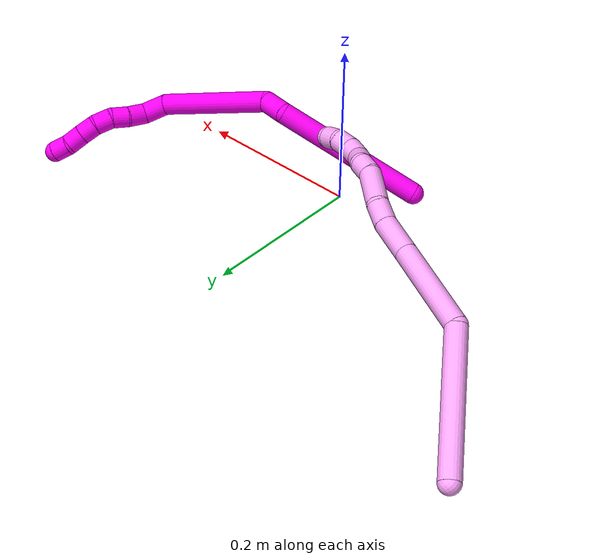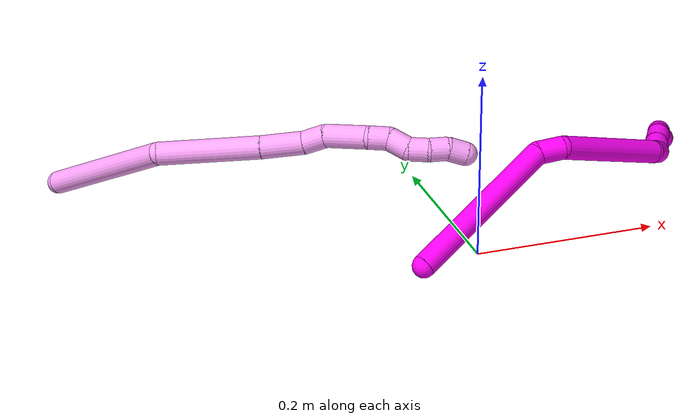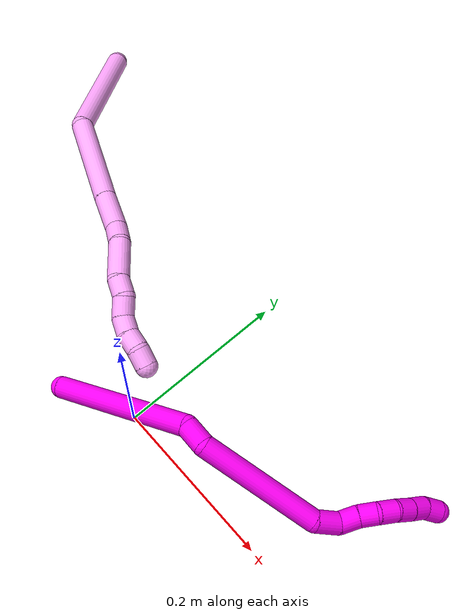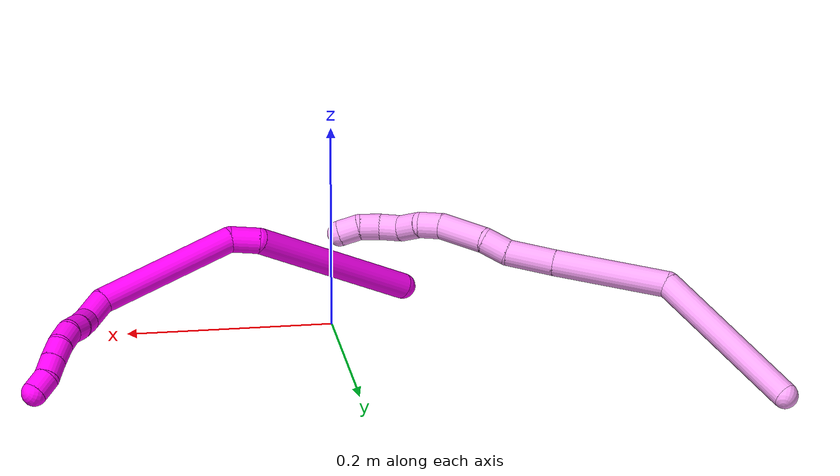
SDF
<sdf version="1.7">
 <world name="default">
  <model name="4">
   <static>0</static>
   <link name="4">
    <collision name="collision-cylinder-e_1_1_4">
     <pose>0.061261 -0.00298 0.054616 0.054517 0.841943 0.024414</pose>
     <geometry><cylinder><radius>0.0125</radius><length>0.164251</length></cylinder></geometry>
     <surface>
      <friction><ode><mu>1.16</mu><mu2>1.16</mu2><slip1>0</slip1><slip2>0</slip2></ode></friction>
      <contact><ode><kp>1e+06</kp><kd>1</kd><max_vel>0</max_vel><min_depth>0.001</min_depth></ode></contact>
     </surface>
    </collision>
    <visual name="visual-cylinder-e_1_1_4">
     <pose>0.061261 -0.00298 0.054616 0.054517 0.841943 0.024414</pose>
     <geometry><cylinder><radius>0.0125</radius><length>0.164251</length></cylinder></geometry>
     <material><ambient>1 0.65098 0.996078 1</ambient></material>
    </visual>
    <collision name="collision-cylinder-e_2_4_5">
     <pose>0.177076 -0.013627 0.116459 0.814765 1.38001 0.684298</pose>
     <geometry><cylinder><radius>0.0125</radius><length>0.111126</length></cylinder></geometry>
     <surface>
      <friction><ode><mu>1.16</mu><mu2>1.16</mu2><slip1>0</slip1><slip2>0</slip2></ode></friction>
      <contact><ode><kp>1e+06</kp><kd>1</kd><max_vel>0</max_vel><min_depth>0.001</min_depth></ode></contact>
     </surface>
    </collision>
    <visual name="visual-cylinder-e_2_4_5">
     <pose>0.177076 -0.013627 0.116459 0.814765 1.38001 0.684298</pose>
     <geometry><cylinder><radius>0.0125</radius><length>0.111126</length></cylinder></geometry>
     <material><ambient>1 0.65098 0.996078 1</ambient></material>
    </visual>
    <collision name="collision-cylinder-e_3_5_6">
     <pose>0.25434 -0.023412 0.126599 0.629373 1.41352 0.542215</pose>
     <geometry><cylinder><radius>0.0125</radius><length>0.045985</length></cylinder></geometry>
     <surface>
      <friction><ode><mu>1.16</mu><mu2>1.16</mu2><slip1>0</slip1><slip2>0</slip2></ode></friction>
      <contact><ode><kp>1e+06</kp><kd>1</kd><max_vel>0</max_vel><min_depth>0.001</min_depth></ode></contact>
     </surface>
    </collision>
    <visual name="visual-cylinder-e_3_5_6">
     <pose>0.25434 -0.023412 0.126599 0.629373 1.41352 0.542215</pose>
     <geometry><cylinder><radius>0.0125</radius><length>0.045985</length></cylinder></geometry>
     <material><ambient>1 0.65098 0.996078 1</ambient></material>
    </visual>
    <collision name="collision-cylinder-e_4_6_7">
     <pose>0.288891 -0.024677 0.133749 -0.199013 1.22068 -0.13943</pose>
     <geometry><cylinder><radius>0.0125</radius><length>0.025214</length></cylinder></geometry>
     <surface>
      <friction><ode><mu>1.16</mu><mu2>1.16</mu2><slip1>0</slip1><slip2>0</slip2></ode></friction>
      <contact><ode><kp>1e+06</kp><kd>1</kd><max_vel>0</max_vel><min_depth>0.001</min_depth></ode></contact>
     </surface>
    </collision>
    <visual name="visual-cylinder-e_4_6_7">
     <pose>0.288891 -0.024677 0.133749 -0.199013 1.22068 -0.13943</pose>
     <geometry><cylinder><radius>0.0125</radius><length>0.025214</length></cylinder></geometry>
     <material><ambient>1 0.65098 0.996078 1</ambient></material>
    </visual>
    <collision name="collision-cylinder-e_5_7_8">
     <pose>0.32199 -0.030036 0.146824 0.612897 1.10063 0.383497</pose>
     <geometry><cylinder><radius>0.0125</radius><length>0.047688</length></cylinder></geometry>
     <surface>
      <friction><ode><mu>1.16</mu><mu2>1.16</mu2><slip1>0</slip1><slip2>0</slip2></ode></friction>
      <contact><ode><kp>1e+06</kp><kd>1</kd><max_vel>0</max_vel><min_depth>0.001</min_depth></ode></contact>
     </surface>
    </collision>
    <visual name="visual-cylinder-e_5_7_8">
     <pose>0.32199 -0.030036 0.146824 0.612897 1.10063 0.383497</pose>
     <geometry><cylinder><radius>0.0125</radius><length>0.047688</length></cylinder></geometry>
     <material><ambient>1 0.65098 0.996078 1</ambient></material>
    </visual>
    <collision name="collision-cylinder-e_6_8_9">
     <pose>0.353781 -0.038908 0.156231 1.35918 1.31819 1.11851</pose>
     <geometry><cylinder><radius>0.0125</radius><length>0.021759</length></cylinder></geometry>
     <surface>
      <friction><ode><mu>1.16</mu><mu2>1.16</mu2><slip1>0</slip1><slip2>0</slip2></ode></friction>
      <contact><ode><kp>1e+06</kp><kd>1</kd><max_vel>0</max_vel><min_depth>0.001</min_depth></ode></contact>
     </surface>
    </collision>
    <visual name="visual-cylinder-e_6_8_9">
     <pose>0.353781 -0.038908 0.156231 1.35918 1.31819 1.11851</pose>
     <geometry><cylinder><radius>0.0125</radius><length>0.021759</length></cylinder></geometry>
     <material><ambient>1 0.65098 0.996078 1</ambient></material>
    </visual>
    <collision name="collision-cylinder-e_7_9_10">
     <pose>0.37306 -0.049022 0.158526 1.34362 0.852028 0.692646</pose>
     <geometry><cylinder><radius>0.0125</radius><length>0.02324</length></cylinder></geometry>
     <surface>
      <friction><ode><mu>1.16</mu><mu2>1.16</mu2><slip1>0</slip1><slip2>0</slip2></ode></friction>
      <contact><ode><kp>1e+06</kp><kd>1</kd><max_vel>0</max_vel><min_depth>0.001</min_depth></ode></contact>
     </surface>
    </collision>
    <visual name="visual-cylinder-e_7_9_10">
     <pose>0.37306 -0.049022 0.158526 1.34362 0.852028 0.692646</pose>
     <geometry><cylinder><radius>0.0125</radius><length>0.02324</length></cylinder></geometry>
     <material><ambient>1 0.65098 0.996078 1</ambient></material>
    </visual>
    <collision name="collision-cylinder-e_8_10_11">
     <pose>0.391856 -0.058894 0.160884 1.31379 1.32698 1.08496</pose>
     <geometry><cylinder><radius>0.0125</radius><length>0.020712</length></cylinder></geometry>
     <surface>
      <friction><ode><mu>1.16</mu><mu2>1.16</mu2><slip1>0</slip1><slip2>0</slip2></ode></friction>
      <contact><ode><kp>1e+06</kp><kd>1</kd><max_vel>0</max_vel><min_depth>0.001</min_depth></ode></contact>
     </surface>
    </collision>
    <visual name="visual-cylinder-e_8_10_11">
     <pose>0.391856 -0.058894 0.160884 1.31379 1.32698 1.08496</pose>
     <geometry><cylinder><radius>0.0125</radius><length>0.020712</length></cylinder></geometry>
     <material><ambient>1 0.65098 0.996078 1</ambient></material>
    </visual>
    <collision name="collision-cylinder-e_9_11_12">
     <pose>0.411753 -0.062195 0.159996 2.61656 1.39379 2.52028</pose>
     <geometry><cylinder><radius>0.0125</radius><length>0.020009</length></cylinder></geometry>
     <surface>
      <friction><ode><mu>1.16</mu><mu2>1.16</mu2><slip1>0</slip1><slip2>0</slip2></ode></friction>
      <contact><ode><kp>1e+06</kp><kd>1</kd><max_vel>0</max_vel><min_depth>0.001</min_depth></ode></contact>
     </surface>
    </collision>
    <visual name="visual-cylinder-e_9_11_12">
     <pose>0.411753 -0.062195 0.159996 2.61656 1.39379 2.52028</pose>
     <geometry><cylinder><radius>0.0125</radius><length>0.020009</length></cylinder></geometry>
     <material><ambient>1 0.65098 0.996078 1</ambient></material>
    </visual>
    <collision name="collision-cylinder-e_10_12_2">
     <pose>0.430405 -0.066952 0.155706 2.19069 1.07524 1.71698</pose>
     <geometry><cylinder><radius>0.0125</radius><length>0.020016</length></cylinder></geometry>
     <surface>
      <friction><ode><mu>1.16</mu><mu2>1.16</mu2><slip1>0</slip1><slip2>0</slip2></ode></friction>
      <contact><ode><kp>1e+06</kp><kd>1</kd><max_vel>0</max_vel><min_depth>0.001</min_depth></ode></contact>
     </surface>
    </collision>
    <visual name="visual-cylinder-e_10_12_2">
     <pose>0.430405 -0.066952 0.155706 2.19069 1.07524 1.71698</pose>
     <geometry><cylinder><radius>0.0125</radius><length>0.020016</length></cylinder></geometry>
     <material><ambient>1 0.65098 0.996078 1</ambient></material>
    </visual>
    <collision name="collision-sphere-2">
     <pose>0.439209 -0.070825 0.152942 0 -0 0</pose>
     <geometry><sphere><radius>0.0125</radius></sphere></geometry>
     <surface>
      <friction><ode><mu>1.16</mu><mu2>1.16</mu2><slip1>0</slip1><slip2>0</slip2></ode></friction>
      <contact><ode><kp>1e+06</kp><kd>1</kd><max_vel>0</max_vel><min_depth>0.001</min_depth></ode></contact>
     </surface>
    </collision>
    <visual name="visual-sphere-2">
     <pose>0.439209 -0.070825 0.152942 0 -0 0</pose>
     <geometry><sphere><radius>0.0125</radius></sphere></geometry>
     <material><ambient>1 0.65098 0.996078 1</ambient></material>
    </visual>
    <collision name="collision-sphere-12">
     <pose>0.421601 -0.063078 0.158471 0 -0 0</pose>
     <geometry><sphere><radius>0.0125</radius></sphere></geometry>
     <surface>
      <friction><ode><mu>1.16</mu><mu2>1.16</mu2><slip1>0</slip1><slip2>0</slip2></ode></friction>
      <contact><ode><kp>1e+06</kp><kd>1</kd><max_vel>0</max_vel><min_depth>0.001</min_depth></ode></contact>
     </surface>
    </collision>
    <visual name="visual-sphere-12">
     <pose>0.421601 -0.063078 0.158471 0 -0 0</pose>
     <geometry><sphere><radius>0.0125</radius></sphere></geometry>
     <material><ambient>1 0.65098 0.996078 1</ambient></material>
    </visual>
    <collision name="collision-sphere-11">
     <pose>0.401905 -0.061312 0.16152 0 -0 0</pose>
     <geometry><sphere><radius>0.0125</radius></sphere></geometry>
     <surface>
      <friction><ode><mu>1.16</mu><mu2>1.16</mu2><slip1>0</slip1><slip2>0</slip2></ode></friction>
      <contact><ode><kp>1e+06</kp><kd>1</kd><max_vel>0</max_vel><min_depth>0.001</min_depth></ode></contact>
     </surface>
    </collision>
    <visual name="visual-sphere-11">
     <pose>0.401905 -0.061312 0.16152 0 -0 0</pose>
     <geometry><sphere><radius>0.0125</radius></sphere></geometry>
     <material><ambient>1 0.65098 0.996078 1</ambient></material>
    </visual>
    <collision name="collision-sphere-10">
     <pose>0.381806 -0.056476 0.160249 0 -0 0</pose>
     <geometry><sphere><radius>0.0125</radius></sphere></geometry>
     <surface>
      <friction><ode><mu>1.16</mu><mu2>1.16</mu2><slip1>0</slip1><slip2>0</slip2></ode></friction>
      <contact><ode><kp>1e+06</kp><kd>1</kd><max_vel>0</max_vel><min_depth>0.001</min_depth></ode></contact>
     </surface>
    </collision>
    <visual name="visual-sphere-10">
     <pose>0.381806 -0.056476 0.160249 0 -0 0</pose>
     <geometry><sphere><radius>0.0125</radius></sphere></geometry>
     <material><ambient>1 0.65098 0.996078 1</ambient></material>
    </visual>
    <collision name="collision-sphere-9">
     <pose>0.364315 -0.041567 0.156802 0 -0 0</pose>
     <geometry><sphere><radius>0.0125</radius></sphere></geometry>
     <surface>
      <friction><ode><mu>1.16</mu><mu2>1.16</mu2><slip1>0</slip1><slip2>0</slip2></ode></friction>
      <contact><ode><kp>1e+06</kp><kd>1</kd><max_vel>0</max_vel><min_depth>0.001</min_depth></ode></contact>
     </surface>
    </collision>
    <visual name="visual-sphere-9">
     <pose>0.364315 -0.041567 0.156802 0 -0 0</pose>
     <geometry><sphere><radius>0.0125</radius></sphere></geometry>
     <material><ambient>1 0.65098 0.996078 1</ambient></material>
    </visual>
    <collision name="collision-sphere-4">
     <pose>0.122521 -0.005961 0.109231 0 -0 0</pose>
     <geometry><sphere><radius>0.0125</radius></sphere></geometry>
     <surface>
      <friction><ode><mu>1.16</mu><mu2>1.16</mu2><slip1>0</slip1><slip2>0</slip2></ode></friction>
      <contact><ode><kp>1e+06</kp><kd>1</kd><max_vel>0</max_vel><min_depth>0.001</min_depth></ode></contact>
     </surface>
    </collision>
    <visual name="visual-sphere-4">
     <pose>0.122521 -0.005961 0.109231 0 -0 0</pose>
     <geometry><sphere><radius>0.0125</radius></sphere></geometry>
     <material><ambient>1 0.65098 0.996078 1</ambient></material>
    </visual>
    <collision name="collision-sphere-1">
     <geometry><sphere><radius>0.0125</radius></sphere></geometry>
     <surface>
      <friction><ode><mu>1.16</mu><mu2>1.16</mu2><slip1>0</slip1><slip2>0</slip2></ode></friction>
      <contact><ode><kp>1e+06</kp><kd>1</kd><max_vel>0</max_vel><min_depth>0.001</min_depth></ode></contact>
     </surface>
    </collision>
    <visual name="visual-sphere-1">
     <geometry><sphere><radius>0.0125</radius></sphere></geometry>
     <material><ambient>1 0.65098 0.996078 1</ambient></material>
    </visual>
    <collision name="collision-sphere-8">
     <pose>0.343247 -0.03625 0.15566 0 -0 0</pose>
     <geometry><sphere><radius>0.0125</radius></sphere></geometry>
     <surface>
      <friction><ode><mu>1.16</mu><mu2>1.16</mu2><slip1>0</slip1><slip2>0</slip2></ode></friction>
      <contact><ode><kp>1e+06</kp><kd>1</kd><max_vel>0</max_vel><min_depth>0.001</min_depth></ode></contact>
     </surface>
    </collision>
    <visual name="visual-sphere-8">
     <pose>0.343247 -0.03625 0.15566 0 -0 0</pose>
     <geometry><sphere><radius>0.0125</radius></sphere></geometry>
     <material><ambient>1 0.65098 0.996078 1</ambient></material>
    </visual>
    <collision name="collision-sphere-5">
     <pose>0.231631 -0.021292 0.123688 0 -0 0</pose>
     <geometry><sphere><radius>0.0125</radius></sphere></geometry>
     <surface>
      <friction><ode><mu>1.16</mu><mu2>1.16</mu2><slip1>0</slip1><slip2>0</slip2></ode></friction>
      <contact><ode><kp>1e+06</kp><kd>1</kd><max_vel>0</max_vel><min_depth>0.001</min_depth></ode></contact>
     </surface>
    </collision>
    <visual name="visual-sphere-5">
     <pose>0.231631 -0.021292 0.123688 0 -0 0</pose>
     <geometry><sphere><radius>0.0125</radius></sphere></geometry>
     <material><ambient>1 0.65098 0.996078 1</ambient></material>
    </visual>
    <collision name="collision-sphere-6">
     <pose>0.277048 -0.025532 0.12951 0 -0 0</pose>
     <geometry><sphere><radius>0.0125</radius></sphere></geometry>
     <surface>
      <friction><ode><mu>1.16</mu><mu2>1.16</mu2><slip1>0</slip1><slip2>0</slip2></ode></friction>
      <contact><ode><kp>1e+06</kp><kd>1</kd><max_vel>0</max_vel><min_depth>0.001</min_depth></ode></contact>
     </surface>
    </collision>
    <visual name="visual-sphere-6">
     <pose>0.277048 -0.025532 0.12951 0 -0 0</pose>
     <geometry><sphere><radius>0.0125</radius></sphere></geometry>
     <material><ambient>1 0.65098 0.996078 1</ambient></material>
    </visual>
    <collision name="collision-sphere-7">
     <pose>0.300733 -0.023822 0.137988 0 -0 0</pose>
     <geometry><sphere><radius>0.0125</radius></sphere></geometry>
     <surface>
      <friction><ode><mu>1.16</mu><mu2>1.16</mu2><slip1>0</slip1><slip2>0</slip2></ode></friction>
      <contact><ode><kp>1e+06</kp><kd>1</kd><max_vel>0</max_vel><min_depth>0.001</min_depth></ode></contact>
     </surface>
    </collision>
    <visual name="visual-sphere-7">
     <pose>0.300733 -0.023822 0.137988 0 -0 0</pose>
     <geometry><sphere><radius>0.0125</radius></sphere></geometry>
     <material><ambient>1 0.65098 0.996078 1</ambient></material>
    </visual>
    <inertial>
     <pose>0.210825 -0.021851 0.109684 0 -0 0</pose>
     <mass>0.5</mass>
     <inertia>
      <ixx>0.000335</ixx>
      <ixy>0</ixy>
      <ixz>0</ixz>
      <iyy>0.000541</iyy>
      <iyz>0</iyz>
      <izz>-0.000378</izz>
     </inertia>
    </inertial>
   </link>
   <pose>-0.387479 0.287357 0.012474 0.986565 -0.15066 -0.223123</pose>
  </model>
  <model name="10">
   <static>0</static>
   <link name="10">
    <collision name="collision-cylinder-e_1_1_4">
     <pose>-0.001274 -0.006285 0.088915 0.070573 -0.014297 -0.000505</pose>
     <geometry><cylinder><radius>0.0125</radius><length>0.178292</length></cylinder></geometry>
     <surface>
      <friction><ode><mu>1.16</mu><mu2>1.16</mu2><slip1>0</slip1><slip2>0</slip2></ode></friction>
      <contact><ode><kp>1e+06</kp><kd>1</kd><max_vel>0</max_vel><min_depth>0.001</min_depth></ode></contact>
     </surface>
    </collision>
    <visual name="visual-cylinder-e_1_1_4">
     <pose>-0.001274 -0.006285 0.088915 0.070573 -0.014297 -0.000505</pose>
     <geometry><cylinder><radius>0.0125</radius><length>0.178292</length></cylinder></geometry>
     <material><ambient>1 0 0.964706 1</ambient></material>
    </visual>
    <collision name="collision-cylinder-e_2_4_5">
     <pose>0.004165 -0.016027 0.189848 0.280012 0.492711 0.070847</pose>
     <geometry><cylinder><radius>0.0125</radius><length>0.028386</length></cylinder></geometry>
     <surface>
      <friction><ode><mu>1.16</mu><mu2>1.16</mu2><slip1>0</slip1><slip2>0</slip2></ode></friction>
      <contact><ode><kp>1e+06</kp><kd>1</kd><max_vel>0</max_vel><min_depth>0.001</min_depth></ode></contact>
     </surface>
    </collision>
    <visual name="visual-cylinder-e_2_4_5">
     <pose>0.004165 -0.016027 0.189848 0.280012 0.492711 0.070847</pose>
     <geometry><cylinder><radius>0.0125</radius><length>0.028386</length></cylinder></geometry>
     <material><ambient>1 0 0.964706 1</ambient></material>
    </visual>
    <collision name="collision-cylinder-e_3_5_6">
     <pose>0.052825 -0.001684 0.255515 -0.320332 0.63843 -0.106689</pose>
     <geometry><cylinder><radius>0.0125</radius><length>0.140776</length></cylinder></geometry>
     <surface>
      <friction><ode><mu>1.16</mu><mu2>1.16</mu2><slip1>0</slip1><slip2>0</slip2></ode></friction>
      <contact><ode><kp>1e+06</kp><kd>1</kd><max_vel>0</max_vel><min_depth>0.001</min_depth></ode></contact>
     </surface>
    </collision>
    <visual name="visual-cylinder-e_3_5_6">
     <pose>0.052825 -0.001684 0.255515 -0.320332 0.63843 -0.106689</pose>
     <geometry><cylinder><radius>0.0125</radius><length>0.140776</length></cylinder></geometry>
     <material><ambient>1 0 0.964706 1</ambient></material>
    </visual>
    <collision name="collision-cylinder-e_4_6_7">
     <pose>0.099794 0.026111 0.318232 -0.834051 0.356204 -0.159155</pose>
     <geometry><cylinder><radius>0.0125</radius><length>0.028803</length></cylinder></geometry>
     <surface>
      <friction><ode><mu>1.16</mu><mu2>1.16</mu2><slip1>0</slip1><slip2>0</slip2></ode></friction>
      <contact><ode><kp>1e+06</kp><kd>1</kd><max_vel>0</max_vel><min_depth>0.001</min_depth></ode></contact>
     </surface>
    </collision>
    <visual name="visual-cylinder-e_4_6_7">
     <pose>0.099794 0.026111 0.318232 -0.834051 0.356204 -0.159155</pose>
     <geometry><cylinder><radius>0.0125</radius><length>0.028803</length></cylinder></geometry>
     <material><ambient>1 0 0.964706 1</ambient></material>
    </visual>
    <collision name="collision-cylinder-e_5_7_8">
     <pose>0.102638 0.043599 0.335314 -0.751719 -0.195953 0.077536</pose>
     <geometry><cylinder><radius>0.0125</radius><length>0.022368</length></cylinder></geometry>
     <surface>
      <friction><ode><mu>1.16</mu><mu2>1.16</mu2><slip1>0</slip1><slip2>0</slip2></ode></friction>
      <contact><ode><kp>1e+06</kp><kd>1</kd><max_vel>0</max_vel><min_depth>0.001</min_depth></ode></contact>
     </surface>
    </collision>
    <visual name="visual-cylinder-e_5_7_8">
     <pose>0.102638 0.043599 0.335314 -0.751719 -0.195953 0.077536</pose>
     <geometry><cylinder><radius>0.0125</radius><length>0.022368</length></cylinder></geometry>
     <material><ambient>1 0 0.964706 1</ambient></material>
    </visual>
    <collision name="collision-cylinder-e_6_8_9">
     <pose>0.099615 0.056767 0.351556 -0.60388 -0.084372 0.026293</pose>
     <geometry><cylinder><radius>0.0125</radius><length>0.020065</length></cylinder></geometry>
     <surface>
      <friction><ode><mu>1.16</mu><mu2>1.16</mu2><slip1>0</slip1><slip2>0</slip2></ode></friction>
      <contact><ode><kp>1e+06</kp><kd>1</kd><max_vel>0</max_vel><min_depth>0.001</min_depth></ode></contact>
     </surface>
    </collision>
    <visual name="visual-cylinder-e_6_8_9">
     <pose>0.099615 0.056767 0.351556 -0.60388 -0.084372 0.026293</pose>
     <geometry><cylinder><radius>0.0125</radius><length>0.020065</length></cylinder></geometry>
     <material><ambient>1 0 0.964706 1</ambient></material>
    </visual>
    <collision name="collision-cylinder-e_7_9_10">
     <pose>0.100228 0.070579 0.366377 -0.889864 0.138407 -0.066077</pose>
     <geometry><cylinder><radius>0.0125</radius><length>0.021145</length></cylinder></geometry>
     <surface>
      <friction><ode><mu>1.16</mu><mu2>1.16</mu2><slip1>0</slip1><slip2>0</slip2></ode></friction>
      <contact><ode><kp>1e+06</kp><kd>1</kd><max_vel>0</max_vel><min_depth>0.001</min_depth></ode></contact>
     </surface>
    </collision>
    <visual name="visual-cylinder-e_7_9_10">
     <pose>0.100228 0.070579 0.366377 -0.889864 0.138407 -0.066077</pose>
     <geometry><cylinder><radius>0.0125</radius><length>0.021145</length></cylinder></geometry>
     <material><ambient>1 0 0.964706 1</ambient></material>
    </visual>
    <collision name="collision-cylinder-e_8_10_11">
     <pose>0.104906 0.087074 0.377583 -1.06639 0.325161 -0.193024</pose>
     <geometry><cylinder><radius>0.0125</radius><length>0.020151</length></cylinder></geometry>
     <surface>
      <friction><ode><mu>1.16</mu><mu2>1.16</mu2><slip1>0</slip1><slip2>0</slip2></ode></friction>
      <contact><ode><kp>1e+06</kp><kd>1</kd><max_vel>0</max_vel><min_depth>0.001</min_depth></ode></contact>
     </surface>
    </collision>
    <visual name="visual-cylinder-e_8_10_11">
     <pose>0.104906 0.087074 0.377583 -1.06639 0.325161 -0.193024</pose>
     <geometry><cylinder><radius>0.0125</radius><length>0.020151</length></cylinder></geometry>
     <material><ambient>1 0 0.964706 1</ambient></material>
    </visual>
    <collision name="collision-cylinder-e_9_11_12">
     <pose>0.111058 0.104013 0.386424 -1.11306 0.297539 -0.185946</pose>
     <geometry><cylinder><radius>0.0125</radius><length>0.020011</length></cylinder></geometry>
     <surface>
      <friction><ode><mu>1.16</mu><mu2>1.16</mu2><slip1>0</slip1><slip2>0</slip2></ode></friction>
      <contact><ode><kp>1e+06</kp><kd>1</kd><max_vel>0</max_vel><min_depth>0.001</min_depth></ode></contact>
     </surface>
    </collision>
    <visual name="visual-cylinder-e_9_11_12">
     <pose>0.111058 0.104013 0.386424 -1.11306 0.297539 -0.185946</pose>
     <geometry><cylinder><radius>0.0125</radius><length>0.020011</length></cylinder></geometry>
     <material><ambient>1 0 0.964706 1</ambient></material>
    </visual>
    <collision name="collision-cylinder-e_10_12_2">
     <pose>0.11896 0.119166 0.396322 -0.858919 0.519959 -0.242443</pose>
     <geometry><cylinder><radius>0.0125</radius><length>0.020004</length></cylinder></geometry>
     <surface>
      <friction><ode><mu>1.16</mu><mu2>1.16</mu2><slip1>0</slip1><slip2>0</slip2></ode></friction>
      <contact><ode><kp>1e+06</kp><kd>1</kd><max_vel>0</max_vel><min_depth>0.001</min_depth></ode></contact>
     </surface>
    </collision>
    <visual name="visual-cylinder-e_10_12_2">
     <pose>0.11896 0.119166 0.396322 -0.858919 0.519959 -0.242443</pose>
     <geometry><cylinder><radius>0.0125</radius><length>0.020004</length></cylinder></geometry>
     <material><ambient>1 0 0.964706 1</ambient></material>
    </visual>
    <collision name="collision-sphere-2">
     <pose>0.12393 0.125738 0.401992 0 -0 0</pose>
     <geometry><sphere><radius>0.0125</radius></sphere></geometry>
     <surface>
      <friction><ode><mu>1.16</mu><mu2>1.16</mu2><slip1>0</slip1><slip2>0</slip2></ode></friction>
      <contact><ode><kp>1e+06</kp><kd>1</kd><max_vel>0</max_vel><min_depth>0.001</min_depth></ode></contact>
     </surface>
    </collision>
    <visual name="visual-sphere-2">
     <pose>0.12393 0.125738 0.401992 0 -0 0</pose>
     <geometry><sphere><radius>0.0125</radius></sphere></geometry>
     <material><ambient>1 0 0.964706 1</ambient></material>
    </visual>
    <collision name="collision-sphere-12">
     <pose>0.113991 0.112594 0.390652 0 -0 0</pose>
     <geometry><sphere><radius>0.0125</radius></sphere></geometry>
     <surface>
      <friction><ode><mu>1.16</mu><mu2>1.16</mu2><slip1>0</slip1><slip2>0</slip2></ode></friction>
      <contact><ode><kp>1e+06</kp><kd>1</kd><max_vel>0</max_vel><min_depth>0.001</min_depth></ode></contact>
     </surface>
    </collision>
    <visual name="visual-sphere-12">
     <pose>0.113991 0.112594 0.390652 0 -0 0</pose>
     <geometry><sphere><radius>0.0125</radius></sphere></geometry>
     <material><ambient>1 0 0.964706 1</ambient></material>
    </visual>
    <collision name="collision-sphere-11">
     <pose>0.108124 0.095433 0.382197 0 -0 0</pose>
     <geometry><sphere><radius>0.0125</radius></sphere></geometry>
     <surface>
      <friction><ode><mu>1.16</mu><mu2>1.16</mu2><slip1>0</slip1><slip2>0</slip2></ode></friction>
      <contact><ode><kp>1e+06</kp><kd>1</kd><max_vel>0</max_vel><min_depth>0.001</min_depth></ode></contact>
     </surface>
    </collision>
    <visual name="visual-sphere-11">
     <pose>0.108124 0.095433 0.382197 0 -0 0</pose>
     <geometry><sphere><radius>0.0125</radius></sphere></geometry>
     <material><ambient>1 0 0.964706 1</ambient></material>
    </visual>
    <collision name="collision-sphere-10">
     <pose>0.101687 0.078716 0.372969 0 -0 0</pose>
     <geometry><sphere><radius>0.0125</radius></sphere></geometry>
     <surface>
      <friction><ode><mu>1.16</mu><mu2>1.16</mu2><slip1>0</slip1><slip2>0</slip2></ode></friction>
      <contact><ode><kp>1e+06</kp><kd>1</kd><max_vel>0</max_vel><min_depth>0.001</min_depth></ode></contact>
     </surface>
    </collision>
    <visual name="visual-sphere-10">
     <pose>0.101687 0.078716 0.372969 0 -0 0</pose>
     <geometry><sphere><radius>0.0125</radius></sphere></geometry>
     <material><ambient>1 0 0.964706 1</ambient></material>
    </visual>
    <collision name="collision-sphere-9">
     <pose>0.09877 0.062443 0.359785 0 -0 0</pose>
     <geometry><sphere><radius>0.0125</radius></sphere></geometry>
     <surface>
      <friction><ode><mu>1.16</mu><mu2>1.16</mu2><slip1>0</slip1><slip2>0</slip2></ode></friction>
      <contact><ode><kp>1e+06</kp><kd>1</kd><max_vel>0</max_vel><min_depth>0.001</min_depth></ode></contact>
     </surface>
    </collision>
    <visual name="visual-sphere-9">
     <pose>0.09877 0.062443 0.359785 0 -0 0</pose>
     <geometry><sphere><radius>0.0125</radius></sphere></geometry>
     <material><ambient>1 0 0.964706 1</ambient></material>
    </visual>
    <collision name="collision-sphere-4">
     <pose>-0.002549 -0.012571 0.17783 0 -0 0</pose>
     <geometry><sphere><radius>0.0125</radius></sphere></geometry>
     <surface>
      <friction><ode><mu>1.16</mu><mu2>1.16</mu2><slip1>0</slip1><slip2>0</slip2></ode></friction>
      <contact><ode><kp>1e+06</kp><kd>1</kd><max_vel>0</max_vel><min_depth>0.001</min_depth></ode></contact>
     </surface>
    </collision>
    <visual name="visual-sphere-4">
     <pose>-0.002549 -0.012571 0.17783 0 -0 0</pose>
     <geometry><sphere><radius>0.0125</radius></sphere></geometry>
     <material><ambient>1 0 0.964706 1</ambient></material>
    </visual>
    <collision name="collision-sphere-1">
     <geometry><sphere><radius>0.0125</radius></sphere></geometry>
     <surface>
      <friction><ode><mu>1.16</mu><mu2>1.16</mu2><slip1>0</slip1><slip2>0</slip2></ode></friction>
      <contact><ode><kp>1e+06</kp><kd>1</kd><max_vel>0</max_vel><min_depth>0.001</min_depth></ode></contact>
     </surface>
    </collision>
    <visual name="visual-sphere-1">
     <geometry><sphere><radius>0.0125</radius></sphere></geometry>
     <material><ambient>1 0 0.964706 1</ambient></material>
    </visual>
    <collision name="collision-sphere-8">
     <pose>0.100461 0.05109 0.343328 0 -0 0</pose>
     <geometry><sphere><radius>0.0125</radius></sphere></geometry>
     <surface>
      <friction><ode><mu>1.16</mu><mu2>1.16</mu2><slip1>0</slip1><slip2>0</slip2></ode></friction>
      <contact><ode><kp>1e+06</kp><kd>1</kd><max_vel>0</max_vel><min_depth>0.001</min_depth></ode></contact>
     </surface>
    </collision>
    <visual name="visual-sphere-8">
     <pose>0.100461 0.05109 0.343328 0 -0 0</pose>
     <geometry><sphere><radius>0.0125</radius></sphere></geometry>
     <material><ambient>1 0 0.964706 1</ambient></material>
    </visual>
    <collision name="collision-sphere-5">
     <pose>0.010878 -0.019483 0.201866 0 -0 0</pose>
     <geometry><sphere><radius>0.0125</radius></sphere></geometry>
     <surface>
      <friction><ode><mu>1.16</mu><mu2>1.16</mu2><slip1>0</slip1><slip2>0</slip2></ode></friction>
      <contact><ode><kp>1e+06</kp><kd>1</kd><max_vel>0</max_vel><min_depth>0.001</min_depth></ode></contact>
     </surface>
    </collision>
    <visual name="visual-sphere-5">
     <pose>0.010878 -0.019483 0.201866 0 -0 0</pose>
     <geometry><sphere><radius>0.0125</radius></sphere></geometry>
     <material><ambient>1 0 0.964706 1</ambient></material>
    </visual>
    <collision name="collision-sphere-6">
     <pose>0.094772 0.016114 0.309163 0 -0 0</pose>
     <geometry><sphere><radius>0.0125</radius></sphere></geometry>
     <surface>
      <friction><ode><mu>1.16</mu><mu2>1.16</mu2><slip1>0</slip1><slip2>0</slip2></ode></friction>
      <contact><ode><kp>1e+06</kp><kd>1</kd><max_vel>0</max_vel><min_depth>0.001</min_depth></ode></contact>
     </surface>
    </collision>
    <visual name="visual-sphere-6">
     <pose>0.094772 0.016114 0.309163 0 -0 0</pose>
     <geometry><sphere><radius>0.0125</radius></sphere></geometry>
     <material><ambient>1 0 0.964706 1</ambient></material>
    </visual>
    <collision name="collision-sphere-7">
     <pose>0.104816 0.036108 0.3273 0 -0 0</pose>
     <geometry><sphere><radius>0.0125</radius></sphere></geometry>
     <surface>
      <friction><ode><mu>1.16</mu><mu2>1.16</mu2><slip1>0</slip1><slip2>0</slip2></ode></friction>
      <contact><ode><kp>1e+06</kp><kd>1</kd><max_vel>0</max_vel><min_depth>0.001</min_depth></ode></contact>
     </surface>
    </collision>
    <visual name="visual-sphere-7">
     <pose>0.104816 0.036108 0.3273 0 -0 0</pose>
     <geometry><sphere><radius>0.0125</radius></sphere></geometry>
     <material><ambient>1 0 0.964706 1</ambient></material>
    </visual>
    <inertial>
     <pose>0.046663 0.017531 0.223897 0 -0 0</pose>
     <mass>0.5</mass>
     <inertia>
      <ixx>0.000672</ixx>
      <ixy>0</ixy>
      <ixz>0</ixz>
      <iyy>0.000707</iyy>
      <iyz>0</iyz>
      <izz>-0.000142</izz>
     </inertia>
    </inertial>
   </link>
   <pose>-0.07568 -0.042238 0.020489 -0.950242 0.859632 -0.618953</pose>
  </model>
 </world>
</sdf>
